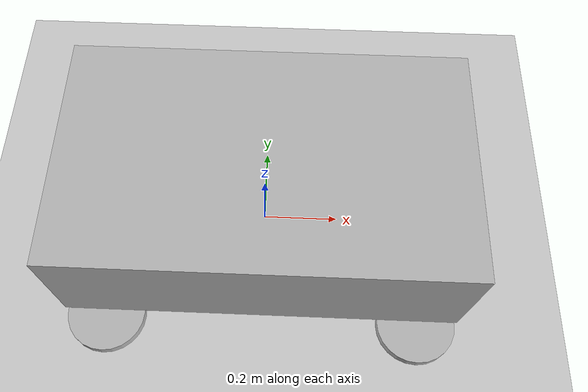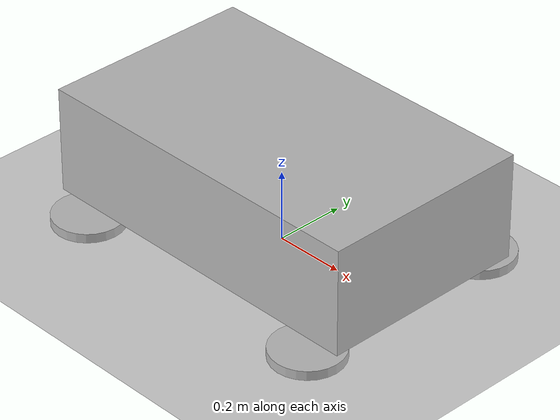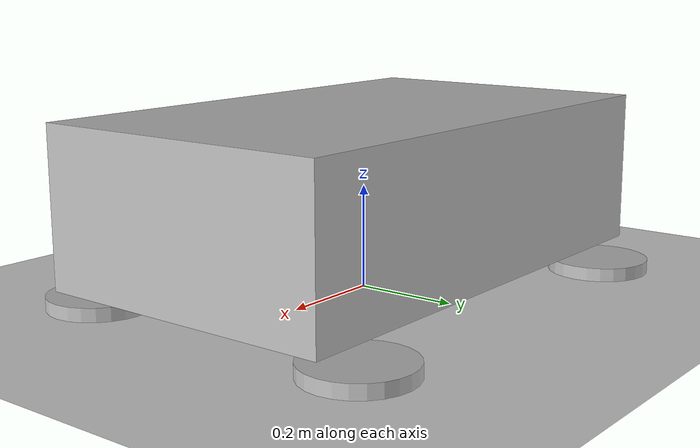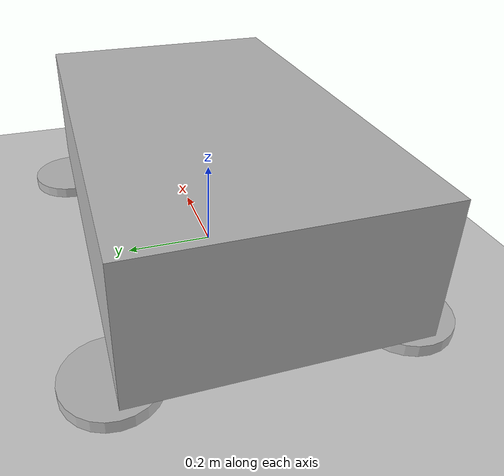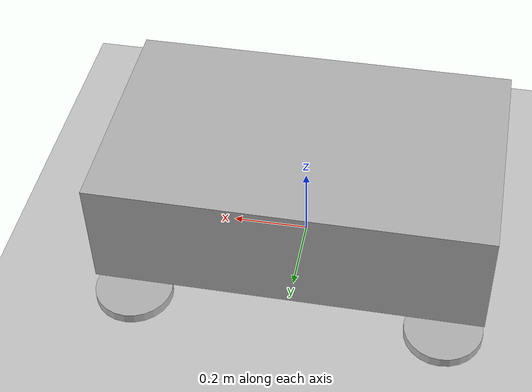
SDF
<?xml version="1.0" ?>
<sdf version='1.10'>

<world name="moon">
    <!-- Physics Configuration -->
    <physics name="default_physics" type="ode">
        <max_step_size>0.001</max_step_size>
        <real_time_factor>1.0</real_time_factor>
    </physics>
    <gravity>0 0 -1.62</gravity>

    <!-- Plugins for simulation -->
    <plugin filename="gz-sim-physics-system" name="gz::sim::systems::Physics"/>
    <plugin filename="gz-sim-user-commands-system" name="gz::sim::systems::UserCommands"/>
    <plugin filename="gz-sim-scene-broadcaster-system" name="gz::sim::systems::SceneBroadcaster"/>

    <!-- Ground Plane -->
    <model name="ground_plane">
        <static>true</static>
        <link name="link">
            <collision name="collision">
                <geometry>
                    <plane>
                        <normal>0 0 1</normal>
                    </plane>
                </geometry>
                <surface>
                    <friction>
                        <ode>
                            <mu>1.0</mu>
                            <mu2>1.0</mu2>
                        </ode>
                    </friction>
                </surface>
            </collision>
            <visual name="visual">
                <geometry>
                    <plane>
                        <size>100 100</size>
                    </plane>
                </geometry>
            </visual>
        </link>
    </model>

    <!-- Rover Model -->
    <model name="rover">
        <static>false</static>

        <!-- Chassis -->
        <link name="chassis">
            <pose>0 0 0.2 0 0 0</pose>
            <inertial>
                <mass>10</mass>
                <inertia>
                    <ixx>1</ixx> <iyy>1</iyy> <izz>1</izz>
                    <ixy>0</ixy> <ixz>0</ixz> <iyz>0</iyz>
                </inertia>
            </inertial>
            <collision name="collision">
                <geometry>
                    <box>
                        <size>1 0.6 0.3</size>
                    </box>
                </geometry>
            </collision>
            <visual name="visual">
                <geometry>
                    <box>
                        <size>1 0.6 0.3</size>
                    </box>
                </geometry>
            </visual>
        </link>

        <!-- Wheels -->
        <link name="left_front_wheel">
            <pose>-0.4 0.3 0 0 0 0</pose>
            <inertial>
                <mass>1</mass>
            </inertial>
            <collision name="collision">
                <geometry>
                    <cylinder>
                        <radius>0.1</radius>
                        <length>0.05</length>
                    </cylinder>
                </geometry>
            </collision>
            <visual name="visual">
                <geometry>
                    <cylinder>
                        <radius>0.1</radius>
                        <length>0.05</length>
                    </cylinder>
                </geometry>
            </visual>
        </link>

        <link name="right_front_wheel">
            <pose>-0.4 -0.3 0 0 0 0</pose>
            <inertial>
                <mass>1</mass>
            </inertial>
            <collision name="collision">
                <geometry>
                    <cylinder>
                        <radius>0.1</radius>
                        <length>0.05</length>
                    </cylinder>
                </geometry>
            </collision>
            <visual name="visual">
                <geometry>
                    <cylinder>
                        <radius>0.1</radius>
                        <length>0.05</length>
                    </cylinder>
                </geometry>
            </visual>
        </link>

        <link name="left_back_wheel">
            <pose>0.4 0.3 0 0 0 0</pose>
            <inertial>
                <mass>1</mass>
            </inertial>
            <collision name="collision">
                <geometry>
                    <cylinder>
                        <radius>0.1</radius>
                        <length>0.05</length>
                    </cylinder>
                </geometry>
            </collision>
            <visual name="visual">
                <geometry>
                    <cylinder>
                        <radius>0.1</radius>
                        <length>0.05</length>
                    </cylinder>
                </geometry>
            </visual>
        </link>

        <link name="right_back_wheel">
            <pose>0.4 -0.3 0 0 0 0</pose>
            <inertial>
                <mass>1</mass>
            </inertial>
            <collision name="collision">
                <geometry>
                    <cylinder>
                        <radius>0.1</radius>
                        <length>0.05</length>
                    </cylinder>
                </geometry>
            </collision>
            <visual name="visual">
                <geometry>
                    <cylinder>
                        <radius>0.1</radius>
                        <length>0.05</length>
                    </cylinder>
                </geometry>
            </visual>
        </link>

        <!-- Joints -->
        <joint name="left_front_wheel_joint" type="revolute">
            <parent>chassis</parent>
            <child>left_front_wheel</child>
            <axis>
                <xyz>0 1 0</xyz>
                <limit>
                    <lower>-3.14</lower>
                    <upper>3.14</upper>
                </limit>
            </axis>
        </joint>

        <joint name="right_front_wheel_joint" type="revolute">
            <parent>chassis</parent>
            <child>right_front_wheel</child>
            <axis>
                <xyz>0 1 0</xyz>
                <limit>
                    <lower>-3.14</lower>
                    <upper>3.14</upper>
                </limit>
            </axis>
        </joint>

        <joint name="left_back_wheel_joint" type="revolute">
            <parent>chassis</parent>
            <child>left_back_wheel</child>
            <axis>
                <xyz>0 1 0</xyz>
                <limit>
                    <lower>-3.14</lower>
                    <upper>3.14</upper>
                </limit>
            </axis>
        </joint>

        <joint name="right_back_wheel_joint" type="revolute">
            <parent>chassis</parent>
            <child>right_back_wheel</child>
            <axis>
                <xyz>0 1 0</xyz>
                <limit>
                    <lower>-3.14</lower>
                    <upper>3.14</upper>
                </limit>
            </axis>
        </joint>

<!-- left front wheel plugins -->

<plugin
 filename="gz-sim-joint-controller-system"
 name="gz::sim::systems::JointController">
 <joint_name>left_front_wheel_joint</joint_name>
 <initial_velocity>1</initial_velocity>
 <p_gain>10</p_gain>
 <i_gain>1</i_gain>
 <d_gain>100</d_gain>
 <topic>left_front_wheel_joint_vel</topic>
</plugin>

<plugin
 filename="gz-sim-joint-position-controller-system"
 name="gz::sim::systems::JointPositionController">
 <joint_name>left_front_wheel_joint</joint_name>
 <use_force_commands>true</use_force_commands>
 <p_gain>10</p_gain>
 <i_gain>1</i_gain>
 <d_gain>100</d_gain>
 <topic>left_front_wheel_joint_pos</topic>
 <cmd_max>1000</cmd_max>
 <cmd_min>-1000</cmd_min>
</plugin>

<!-- right front wheel plugins -->

<plugin
 filename="gz-sim-joint-controller-system"
 name="gz::sim::systems::JointController">
 <joint_name>right_front_wheel_joint</joint_name>
 <initial_velocity>1</initial_velocity>
 <p_gain>100</p_gain>
 <i_gain>1</i_gain>
 <d_gain>1</d_gain>
 <topic>right_front_wheel_joint_vel</topic>
</plugin>

<plugin
 filename="gz-sim-joint-position-controller-system"
 name="gz::sim::systems::JointPositionController">
 <joint_name>right_front_wheel_joint</joint_name>
 <use_force_commands>true</use_force_commands>
 <p_gain>100</p_gain>
 <i_gain>1</i_gain>
 <d_gain>1</d_gain>
 <topic>right_front_wheel_joint_pos</topic>
 <cmd_max>1000</cmd_max>
 <cmd_min>-1000</cmd_min>
</plugin>

    </model>

</world>
</sdf>
